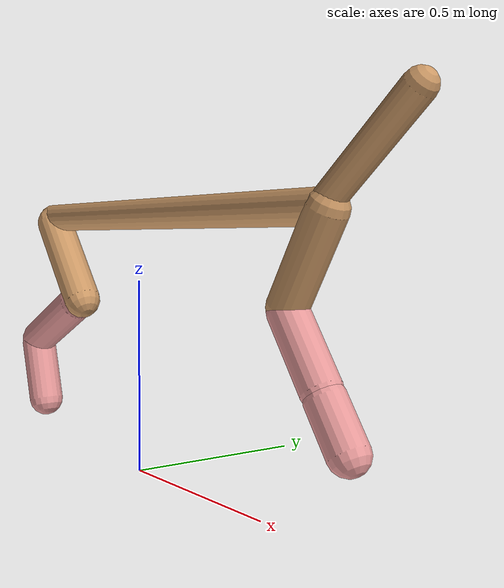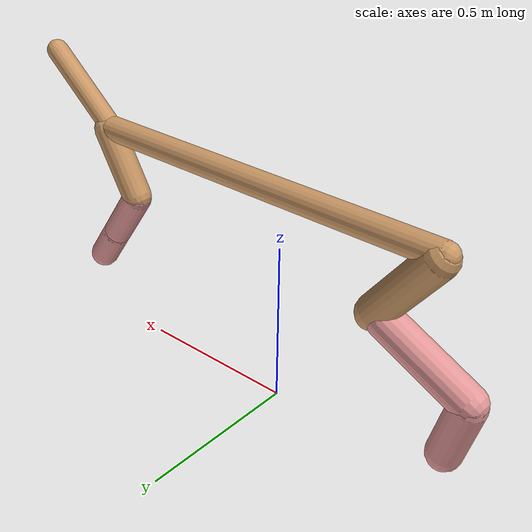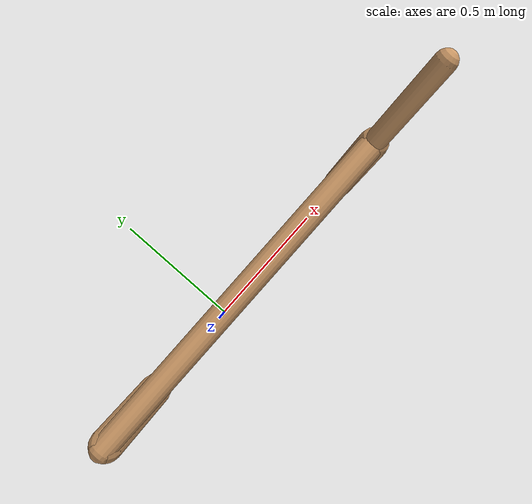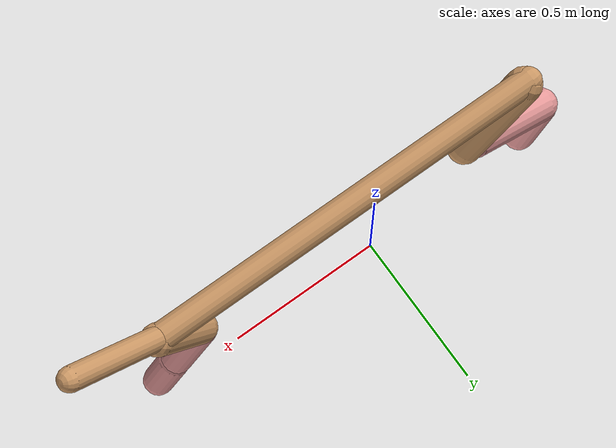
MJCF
<mujoco model="cheetah">
  <compiler angle="radian" coordinate="local" inertiafromgeom="true" settotalmass="14" />
  <default>
    <joint armature=".1" damping=".01" limited="true" solimplimit="0 .8 .03" solreflimit=".02 1" stiffness="8" />
    <geom conaffinity="0" condim="3" contype="1" friction="0.8 .1 .1" rgba="0.8 0.6 .4 1" solimp="0.0 0.8 0.01" solref="0.02 1" />
    <motor ctrllimited="true" ctrlrange="-1 1" />
  </default>
  <size nstack="300000" nuser_geom="1" />
  <option gravity="0 0 -9.81" timestep="0.01" />
  <worldbody>
    <body name="torso" pos="0.0 0.0 0.6709255911495644">
      <joint armature="0" axis="1 0 0" damping="0" limited="false" name="ignorex" pos="0 0 0" stiffness="0" type="slide" />
      <joint armature="0" axis="0 0 1" damping="0" limited="false" name="ignorez" pos="0 0 0" stiffness="0" type="slide" />
      <joint armature="0" axis="0 1 0" damping="0" limited="false" name="ignorey" pos="0 0 0" stiffness="0" type="hinge" />
      <geom fromto="-0.5 0.0 0.0 0.694937744028925 0.0 0.0" name="torso" size="0.03860576256262355" type="capsule" />
      <geom axisangle="0 1 0 .87" name="head" pos="0.794937744028925 0.0 0.1" size="0.0333553822913893 0.15" type="capsule" />

      <body name="bthigh" pos="-.5 0 0">
        <joint axis="0 1 0" damping="6" name="bthigh" pos="0 0 0" range="-.52 1.05" stiffness="240" type="hinge" />
        <geom axisangle="0 1 0 -3.8" name="bthigh" pos="0.09782168466821116 0.0 -0.1271681900686745" size="0.05138954531287025 0.14142729721753122" type="capsule" />
        <body name="bshin" pos="0.1556433693364223 0.0 -0.24433638013734899">
          <joint axis="0 1 0" damping="4.5" name="bshin" pos="0 0 0" range="-.785 .785" stiffness="180" type="hinge" />
          <geom axisangle="0 1 0 -2.03" name="bshin" pos="-0.1366942870544816 0.0 -0.0683471435272408" rgba="0.9 0.6 0.6 1" size="0.05138954531287025 0.14630410056985987" type="capsule" />
          <body name="bfoot" pos="-0.2733885741089632 0.0 -0.1366942870544816">
            <joint axis="0 1 0" damping="3" name="bfoot" pos="0 0 0" range="-.4 .785" stiffness="120" type="hinge" />
            <geom axisangle="0 1 0 -.27" name="bfoot" pos="0.029315663468175303 0.0 -0.09478731188043348" rgba="0.9 0.6 0.6 1" size="0.05138954531287025 0.09168390302377886" type="capsule" />
            <inertial mass="10" />
          </body>
        </body>
      </body>
      <body name="fthigh" pos="0.694937744028925 0.0 0.0">
        <joint axis="0 1 0" damping="4.5" name="fthigh" pos="0 0 0" range="-1.5 0.8" stiffness="180" type="hinge" />
        <geom axisangle="0 1 0 .52" name="fthigh" pos="-0.06013252950448186 0.0 -0.10308433629339747" size="0.045275237647031036 0.11341667411763796" type="capsule" />
        <body name="fshin" pos="-0.12026505900896373 0.0 -0.20616867258679494">
          <joint axis="0 1 0" damping="3" name="fshin" pos="0 0 0" range="-1.2 1.1" stiffness="120" type="hinge" />
          <geom axisangle="0 1 0 -.6" name="fshin" pos="0.05586180191278388 0.0 -0.07734711034077768" rgba="0.9 0.6 0.6 1" size="0.045275237647031036 0.0903922365148092" type="capsule" />
          <body name="ffoot" pos="0.11172360382556776 0.0 -0.15469422068155536">
            <joint axis="0 1 0" damping="1.5" name="ffoot" pos="0 0 0" range="-3.1 -0.3" stiffness="60" type="hinge" />
            <geom axisangle="0 1 0 -.6" name="ffoot" pos="0.03942640413997189 0.0 -0.06132996199551184" rgba="0.9 0.6 0.6 1" size="0.045275237647031036 0.05969298637770419" type="capsule" />
            <inertial mass="10" />
          </body>
        </body>
      </body>
    </body>
  </worldbody>
  <actuator>
    <motor gear="120" joint="bthigh" name="bthigh" />
    <motor gear="90" joint="bshin" name="bshin" />
    <motor gear="60" joint="bfoot" name="bfoot" />
    <motor gear="120" joint="fthigh" name="fthigh" />
    <motor gear="60" joint="fshin" name="fshin" />
    <motor gear="30" joint="ffoot" name="ffoot" />
  </actuator>
</mujoco>
